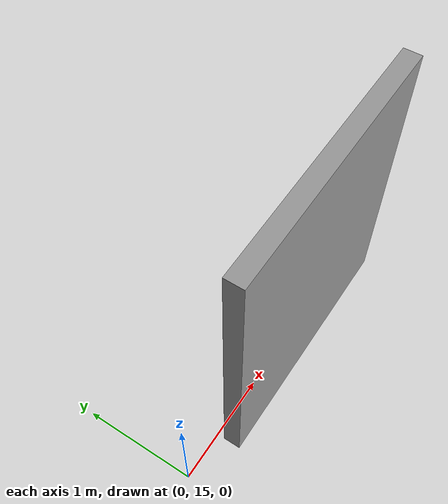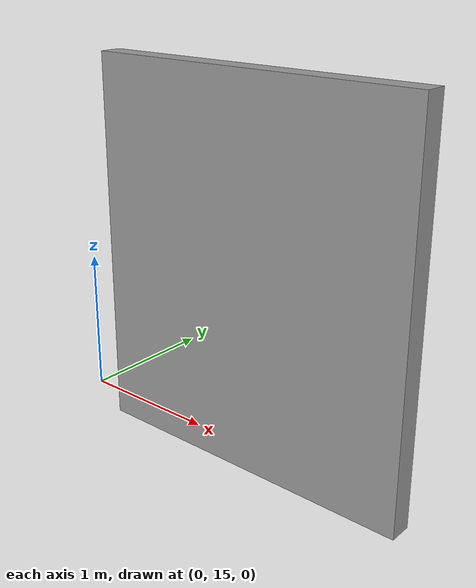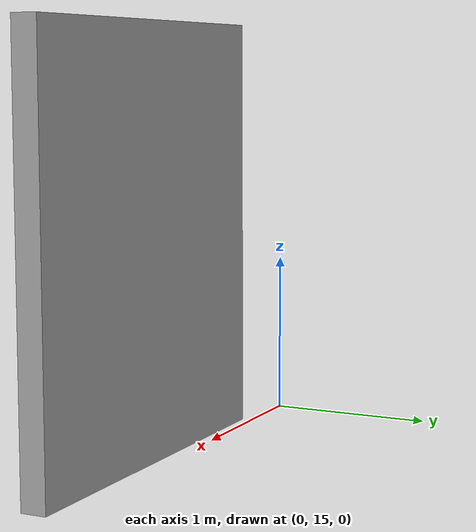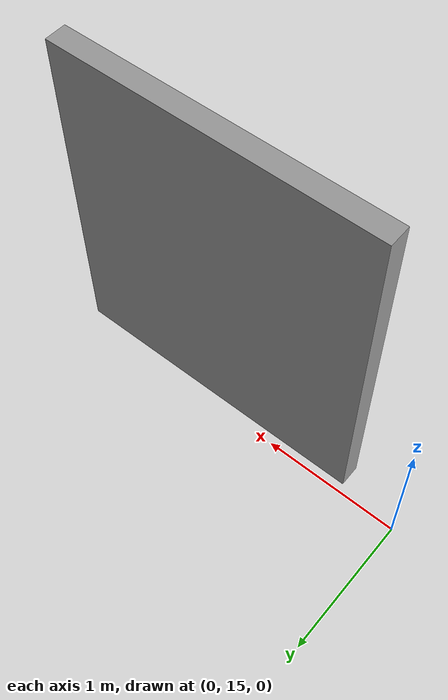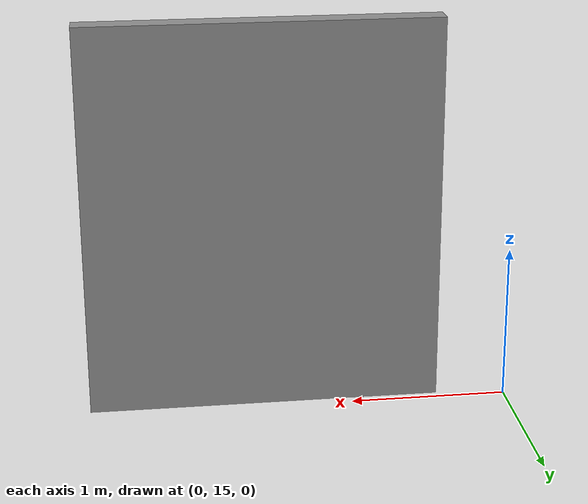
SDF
<?xml version='1.0'?>
<sdf version='1.7'>
  <model name='fix_wall1'>
    <pose>1.34324 7.46807 0 0 -0 0</pose>
    <link name='Wall_10'>
      <collision name='Wall_10_Collision'>
        <geometry>
          <box>
            <size>2.25 0.15 2.5</size>
          </box>
        </geometry>
        <pose>0 0 1.25 0 -0 0</pose>
      </collision>
      <visual name='Wall_10_Visual'>
        <pose>0 0 1.25 0 -0 0</pose>
        <geometry>
          <box>
            <size>2.25 0.15 2.5</size>
          </box>
        </geometry>
        <material>
          <script>
            <uri>file://media/materials/scripts/gazebo.material</uri>
            <name>Gazebo/Grey</name>
          </script>
          <ambient>1 1 1 1</ambient>
        </material>
        <meta>
          <layer>0</layer>
        </meta>
      </visual>
      <pose>0.218244 7.39307 0 0 -0 3.14159</pose>
    </link>
    <static>1</static>
  </model>
</sdf>
